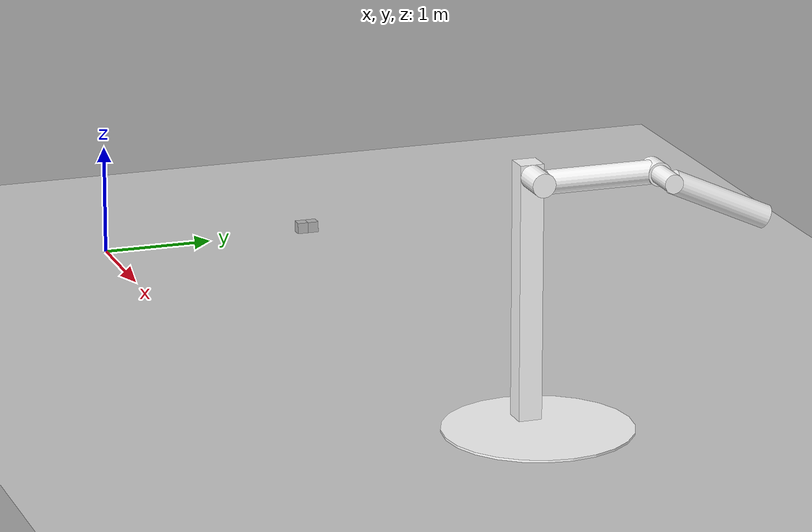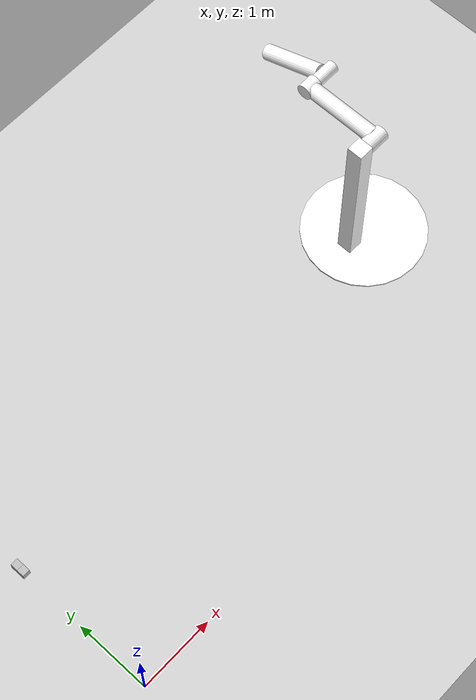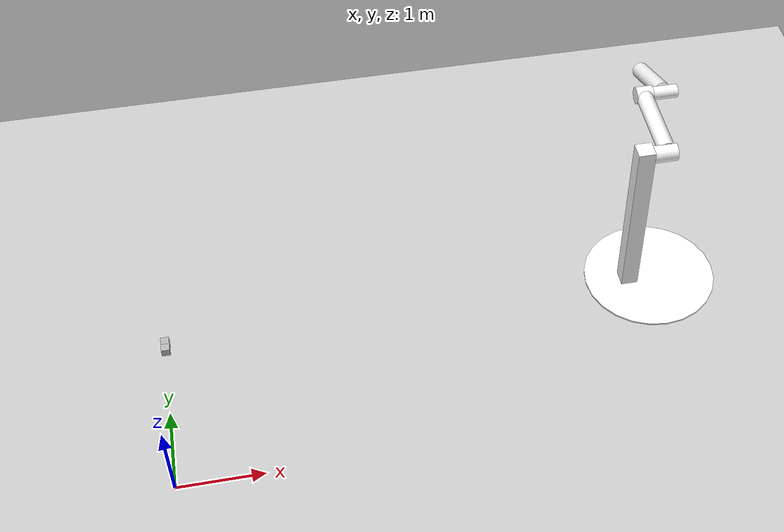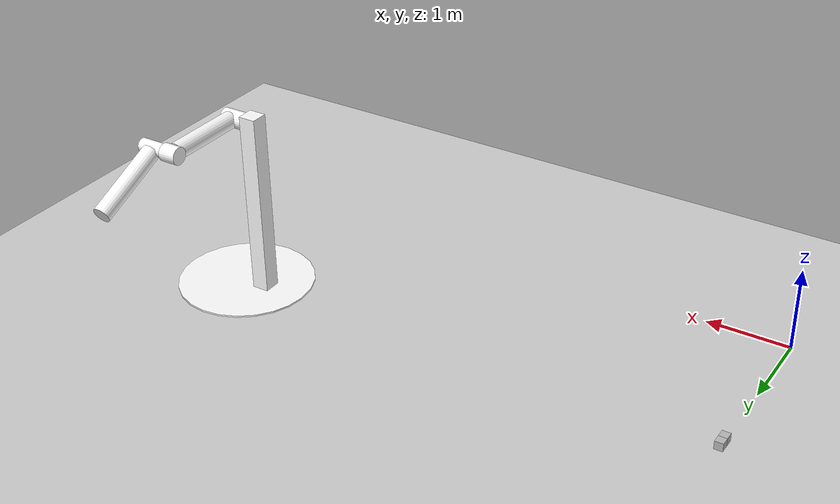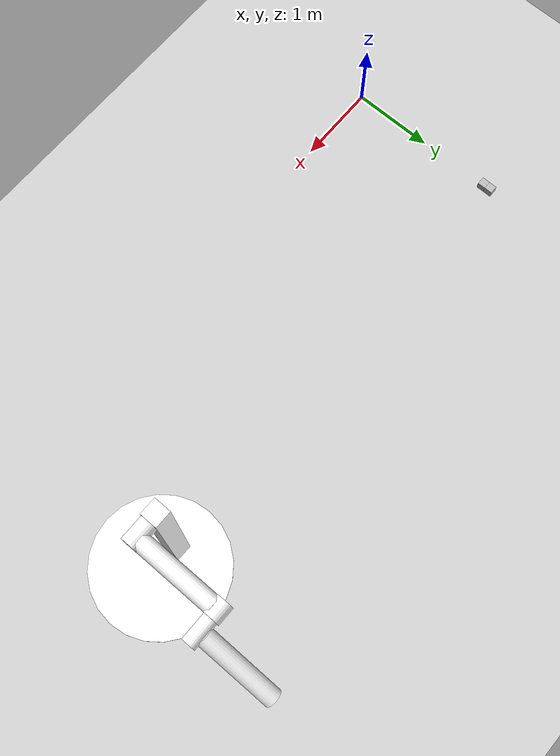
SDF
<sdf version="1.6">
 <world name="default">
  <light type="directional" name="sun">
   <diffuse>1.0 1.0 1.0 1.0</diffuse>
   <specular>0.2 0.2 0.2 1</specular>
   <direction>-1.0 0.0 -0.2</direction>
  </light>
  <include><uri>model://ground_plane</uri></include>
  <include><uri>model://double_pendulum_with_base</uri><pose>5.941 2.017 0.0 0 0 0</pose></include>
  <model name="camera_lensflare">
   <static>true</static>
   <pose>0.0 1.9 0.05 0 0 0</pose>
   <link name="link">
    <visual name="visual"><geometry><box><size>0.1 0.1 0.1</size></box></geometry></visual>
    <sensor name="camera_sensor_lensflare" type="camera">
     <camera>
      <horizontal_fov>0.78539816339744828</horizontal_fov>
      <image><width>320</width><height>240</height></image>
      <clip><near>0.1</near><far>100</far></clip>
     </camera>
     <always_on>1</always_on>
     <update_rate>30</update_rate>
     <visualize>true</visualize>
     <plugin name="lensflare" filename="libLensFlareSensorPlugin.so"/>
    </sensor>
   </link>
  </model>
  <model name="wide_angle_camera_lensflare">
   <static>true</static>
   <pose>0 2 0.05 0 0 0</pose>
   <link name="link">
    <visual name="visual"><geometry><box><size>0.1 0.1 0.1</size></box></geometry></visual>
    <sensor name="camera" type="wideanglecamera">
     <camera>
      <horizontal_fov>1.047</horizontal_fov>
      <image><width>320</width><height>240</height></image>
      <clip><near>0.1</near><far>100</far></clip>
      <lens>
       <type>gnomonical</type>
       <scale_to_hfov>true</scale_to_hfov>
       <cutoff_angle>1.5707</cutoff_angle>
       <env_texture_size>512</env_texture_size>
      </lens>
     </camera>
     <always_on>1</always_on>
     <update_rate>30</update_rate>
     <visualize>true</visualize>
     <plugin name="lensflare" filename="libLensFlareSensorPlugin.so"/>
    </sensor>
   </link>
  </model>
 </world>
</sdf>

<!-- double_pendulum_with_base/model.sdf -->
<sdf version="1.5">
  <model name="double_pendulum_with_base">
    <link name="base">
      <inertial>
        <mass>100</mass>
      </inertial>
      <visual name="vis_plate_on_ground">
        <pose>0 0 0.01 0 0 0</pose>
        <geometry>
          <cylinder>
            <radius>0.8</radius>
            <length>0.02</length>
          </cylinder>
        </geometry>
        <material><diffuse>1 1 1 1</diffuse><specular>0.1 0.1 0.1 1</specular></material>
      </visual>
      <visual name="vis_pole">
        <pose>-0.275 0 1.1 0 0 0</pose>
        <geometry>
          <box>
            <size>0.2 0.2 2.2</size>
          </box>
        </geometry>
        <material><diffuse>1 1 1 1</diffuse><specular>0.1 0.1 0.1 1</specular></material>
      </visual>
      <collision name="col_plate_on_ground">
        <pose>0 0 0.01 0 0 0</pose>
        <geometry>
          <cylinder>
            <radius>0.8</radius>
            <length>0.02</length>
          </cylinder>
        </geometry>
      </collision>
      <collision name="col_pole">
        <pose>-0.275 0 1.1 0 0 0</pose>
        <geometry>
          <box>
            <size>0.2 0.2 2.2</size>
          </box>
        </geometry>
      </collision>
    </link>
    <!-- upper link, length 1, IC -90 degrees -->
    <link name="upper_link">
      <pose>0 0 2.1 -1.5708 0 0</pose>
      <self_collide>0</self_collide>
      <inertial>
        <pose>0 0 0.5 0 0 0</pose>
      </inertial>
      <visual name="vis_upper_joint">
        <pose>-0.05 0 0 0 1.5708 0</pose>
        <geometry>
          <cylinder>
            <radius>0.1</radius>
            <length>0.3</length>
          </cylinder>
        </geometry>
        <material><diffuse>1 1 1 1</diffuse><specular>0.1 0.1 0.1 1</specular></material>
      </visual>
      <visual name="vis_lower_joint">
        <pose>0 0 1.0 0 1.5708 0</pose>
        <geometry>
          <cylinder>
            <radius>0.1</radius>
            <length>0.2</length>
          </cylinder>
        </geometry>
        <material><diffuse>1 1 1 1</diffuse><specular>0.1 0.1 0.1 1</specular></material>
      </visual>
      <visual name="vis_cylinder">
        <pose>0 0 0.5 0 0 0</pose>
        <geometry>
          <cylinder>
            <radius>0.1</radius>
            <length>0.9</length>
          </cylinder>
        </geometry>
        <material><diffuse>1 1 1 1</diffuse><specular>0.1 0.1 0.1 1</specular></material>
      </visual>
      <collision name="col_upper_joint">
        <pose>-0.05 0 0 0 1.5708 0</pose>
        <geometry>
          <cylinder>
            <radius>0.1</radius>
            <length>0.3</length>
          </cylinder>
        </geometry>
      </collision>
      <collision name="col_lower_joint">
        <pose>0 0 1.0 0 1.5708 0</pose>
        <geometry>
          <cylinder>
            <radius>0.1</radius>
            <length>0.2</length>
          </cylinder>
        </geometry>
      </collision>
      <collision name="col_cylinder">
        <pose>0 0 0.5 0 0 0</pose>
        <geometry>
          <cylinder>
            <radius>0.1</radius>
            <length>0.9</length>
          </cylinder>
        </geometry>
      </collision>
    </link>
    <!-- lower link, length 1, IC ~-120 degrees more -->
    <link name="lower_link">
      <pose>0.25 1.0 2.1 -2 0 0</pose>
      <self_collide>0</self_collide>
      <inertial>
        <pose>0 0 0.5 0 0 0</pose>
      </inertial>
      <visual name="vis_lower_joint">
        <pose>0 0 0 0 1.5708 0</pose>
        <geometry>
          <cylinder>
            <radius>0.08</radius>
            <length>0.3</length>
          </cylinder>
        </geometry>
        <material><diffuse>1 1 1 1</diffuse><specular>0.1 0.1 0.1 1</specular></material>
      </visual>
      <visual name="vis_cylinder">
        <pose>0 0 0.5 0 0 0</pose>
        <geometry>
          <cylinder>
            <radius>0.1</radius>
            <length>0.9</length>
          </cylinder>
        </geometry>
        <material><diffuse>1 1 1 1</diffuse><specular>0.1 0.1 0.1 1</specular></material>
      </visual>
      <collision name="col_lower_joint">
        <pose>0 0 0 0 1.5708 0</pose>
        <geometry>
          <cylinder>
            <radius>0.08</radius>
            <length>0.3</length>
          </cylinder>
        </geometry>
      </collision>
      <collision name="col_cylinder">
        <pose>0 0 0.5 0 0 0</pose>
        <geometry>
          <cylinder>
            <radius>0.1</radius>
            <length>0.9</length>
          </cylinder>
        </geometry>
      </collision>
    </link>
    <!-- pin joint for upper link, at origin of upper link -->
    <joint name="upper_joint" type="revolute">
      <parent>base</parent>
      <child>upper_link</child>
      <axis>
        <xyz>1.0 0 0</xyz>
      </axis>
    </joint>
    <!-- pin joint for lower link, at origin of child link -->
    <joint name="lower_joint" type="revolute">
      <parent>upper_link</parent>
      <child>lower_link</child>
      <axis>
        <xyz>1.0 0 0</xyz>
      </axis>
    </joint>
  </model>
</sdf>
